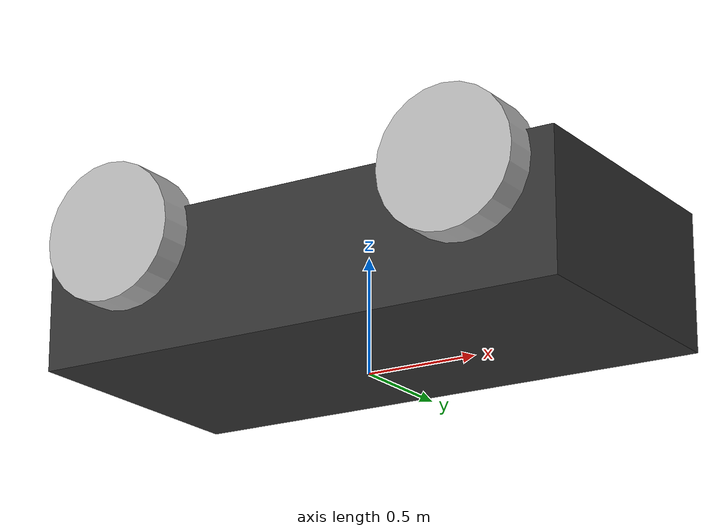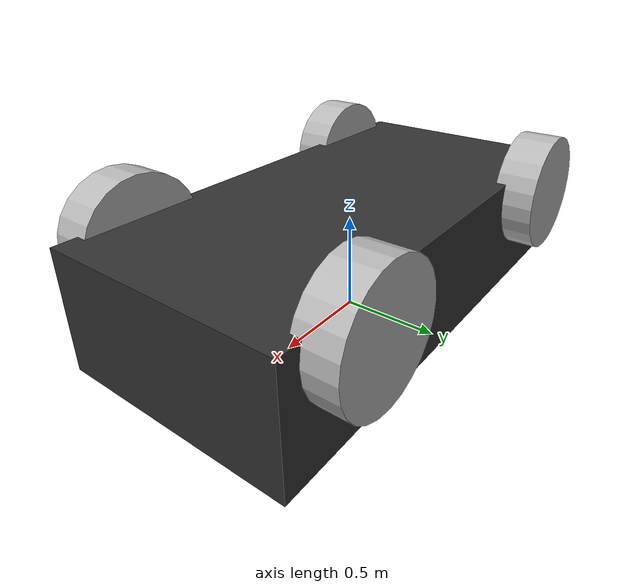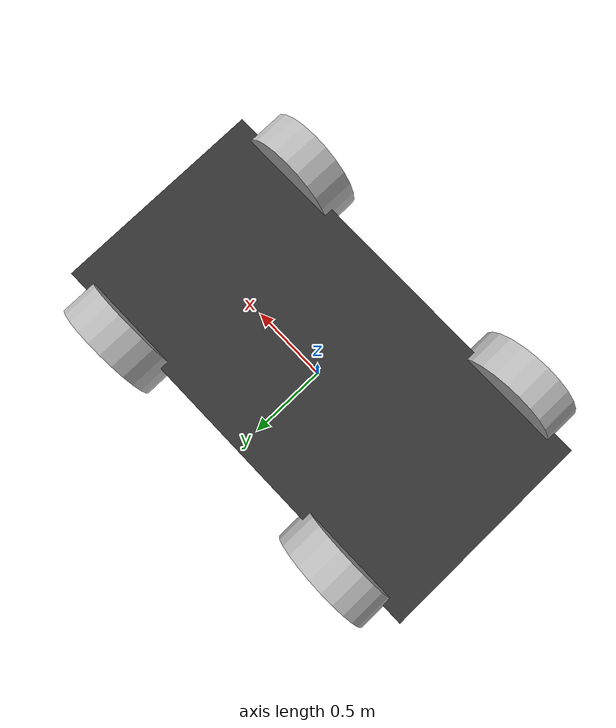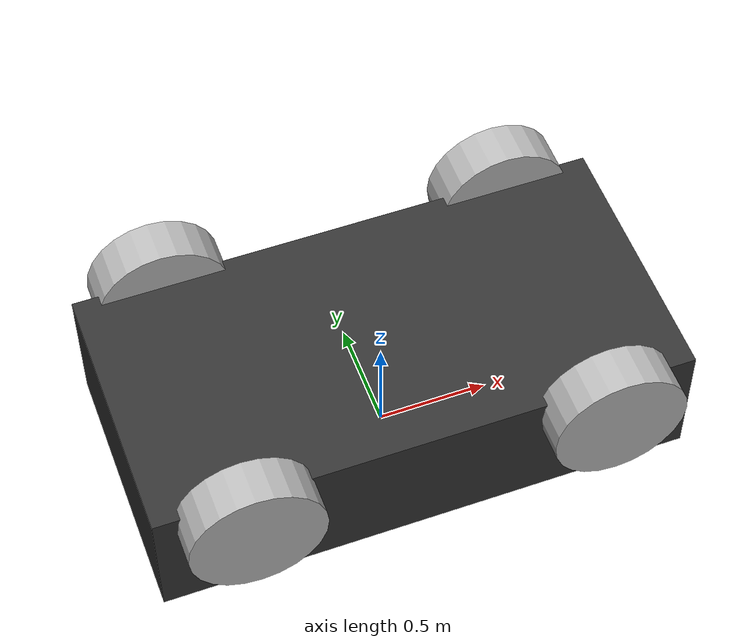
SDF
<?xml version="1.0"?>
<sdf version="1.7">
  <model name="simple_car">
    <pose>0 0 0.35 0 0 0</pose>
    <link name="chassis">
      <inertial>
        <mass>1200</mass>
        <inertia>
          <ixx>400</ixx>
          <iyy>1200</iyy>
          <izz>1300</izz>
          <ixy>0</ixy>
          <ixz>0</ixz>
          <iyz>0</iyz>
        </inertia>
      </inertial>
      <collision name="chassis_collision">
        <geometry>
          <box>
            <size>2.4 1.2 0.6</size>
          </box>
        </geometry>
      </collision>
      <visual name="chassis_visual">
        <geometry>
          <box>
            <size>2.4 1.2 0.6</size>
          </box>
        </geometry>
        <material>
          <ambient>0.1 0.1 0.1 1</ambient>
          <diffuse>0.2 0.2 0.2 1</diffuse>
        </material>
      </visual>
    </link>

    <link name="wheel_fl">
      <pose>0.8 0.65 0.2 1.5708 0 0</pose>
      <inertial>
        <mass>20</mass>
        <inertia>
          <ixx>0.6</ixx>
          <iyy>0.6</iyy>
          <izz>0.6</izz>
          <ixy>0</ixy>
          <ixz>0</ixz>
          <iyz>0</iyz>
        </inertia>
      </inertial>
      <collision name="wheel_fl_collision">
        <geometry>
          <cylinder>
            <radius>0.3</radius>
            <length>0.2</length>
          </cylinder>
        </geometry>
      </collision>
      <visual name="wheel_fl_visual">
        <geometry>
          <cylinder>
            <radius>0.3</radius>
            <length>0.2</length>
          </cylinder>
        </geometry>
      </visual>
    </link>

    <link name="wheel_fr">
      <pose>0.8 -0.65 0.2 1.5708 0 0</pose>
      <inertial>
        <mass>20</mass>
        <inertia>
          <ixx>0.6</ixx>
          <iyy>0.6</iyy>
          <izz>0.6</izz>
          <ixy>0</ixy>
          <ixz>0</ixz>
          <iyz>0</iyz>
        </inertia>
      </inertial>
      <collision name="wheel_fr_collision">
        <geometry>
          <cylinder>
            <radius>0.3</radius>
            <length>0.2</length>
          </cylinder>
        </geometry>
      </collision>
      <visual name="wheel_fr_visual">
        <geometry>
          <cylinder>
            <radius>0.3</radius>
            <length>0.2</length>
          </cylinder>
        </geometry>
      </visual>
    </link>

    <link name="wheel_rl">
      <pose>-0.8 0.65 0.2 1.5708 0 0</pose>
      <inertial>
        <mass>20</mass>
        <inertia>
          <ixx>0.6</ixx>
          <iyy>0.6</iyy>
          <izz>0.6</izz>
          <ixy>0</ixy>
          <ixz>0</ixz>
          <iyz>0</iyz>
        </inertia>
      </inertial>
      <collision name="wheel_rl_collision">
        <geometry>
          <cylinder>
            <radius>0.3</radius>
            <length>0.2</length>
          </cylinder>
        </geometry>
      </collision>
      <visual name="wheel_rl_visual">
        <geometry>
          <cylinder>
            <radius>0.3</radius>
            <length>0.2</length>
          </cylinder>
        </geometry>
      </visual>
    </link>

    <link name="wheel_rr">
      <pose>-0.8 -0.65 0.2 1.5708 0 0</pose>
      <inertial>
        <mass>20</mass>
        <inertia>
          <ixx>0.6</ixx>
          <iyy>0.6</iyy>
          <izz>0.6</izz>
          <ixy>0</ixy>
          <ixz>0</ixz>
          <iyz>0</iyz>
        </inertia>
      </inertial>
      <collision name="wheel_rr_collision">
        <geometry>
          <cylinder>
            <radius>0.3</radius>
            <length>0.2</length>
          </cylinder>
        </geometry>
      </collision>
      <visual name="wheel_rr_visual">
        <geometry>
          <cylinder>
            <radius>0.3</radius>
            <length>0.2</length>
          </cylinder>
        </geometry>
      </visual>
    </link>

    <joint name="wheel_fl_joint" type="revolute">
      <parent>chassis</parent>
      <child>wheel_fl</child>
      <axis>
        <xyz>0 0 1</xyz>
        <limit>
          <lower>-1e16</lower>
          <upper>1e16</upper>
          <effort>200</effort>
          <velocity>20</velocity>
        </limit>
      </axis>
    </joint>

    <joint name="wheel_fr_joint" type="revolute">
      <parent>chassis</parent>
      <child>wheel_fr</child>
      <axis>
        <xyz>0 0 1</xyz>
        <limit>
          <lower>-1e16</lower>
          <upper>1e16</upper>
          <effort>200</effort>
          <velocity>20</velocity>
        </limit>
      </axis>
    </joint>

    <joint name="wheel_rl_joint" type="revolute">
      <parent>chassis</parent>
      <child>wheel_rl</child>
      <axis>
        <xyz>0 0 1</xyz>
        <limit>
          <lower>-1e16</lower>
          <upper>1e16</upper>
          <effort>200</effort>
          <velocity>20</velocity>
        </limit>
      </axis>
    </joint>

    <joint name="wheel_rr_joint" type="revolute">
      <parent>chassis</parent>
      <child>wheel_rr</child>
      <axis>
        <xyz>0 0 1</xyz>
        <limit>
          <lower>-1e16</lower>
          <upper>1e16</upper>
          <effort>200</effort>
          <velocity>20</velocity>
        </limit>
      </axis>
    </joint>
  </model>
</sdf>
